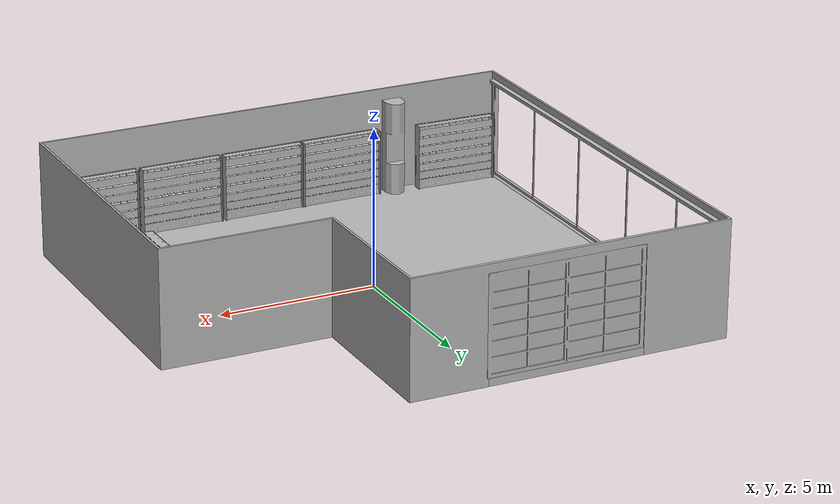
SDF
<sdf version="1.7">
 <world name="default">
  <physics type="ode">
   <ode>
    <solver>
     <type>quick</type>
     <iters>10</iters>
     <sor>1.3</sor>
     <use_dynamic_moi_rescaling>0</use_dynamic_moi_rescaling>
    </solver>
    <constraints>
     <cfm>1e-05</cfm>
     <erp>0.2</erp>
     <contact_max_correcting_vel>1000</contact_max_correcting_vel>
     <contact_surface_layer>0.01</contact_surface_layer>
    </constraints>
   </ode>
   <max_step_size>0.004</max_step_size>
   <real_time_factor>1</real_time_factor>
   <real_time_update_rate>250</real_time_update_rate>
   <gravity>0 0 -9.8066</gravity>
   <magnetic_field>6.0e-6 2.3e-5 -4.2e-5</magnetic_field>
  </physics>
  <model name="AirConditionerC_01_001">
   <frame name="aws_robomaker_retail_AirConditionerC_01::__model__" attached_to="aws_robomaker_retail_AirConditionerC_01::link">
    <pose relative_to="__model__">0 0 0 0 -0 0</pose>
   </frame>
   <link name="aws_robomaker_retail_AirConditionerC_01::link">
    <inertial><mass>50</mass></inertial>
    <collision name="collision">
     <geometry>
      <mesh>
       <uri>model://aws_robomaker_retail_AirConditionerC_01/meshes/aws_AirConditionerC_01_collision.DAE</uri>
       <scale>1 1 1</scale>
      </mesh>
     </geometry>
    </collision>
    <visual name="visual">
     <geometry>
      <mesh>
       <uri>model://aws_robomaker_retail_AirConditionerC_01/meshes/aws_AirConditionerC_01_visual.DAE</uri>
      </mesh>
     </geometry>
     <meta><layer>3</layer></meta>
    </visual>
    <pose relative_to="aws_robomaker_retail_AirConditionerC_01::__model__">0 0 0 0 -0 0</pose>
   </link>
   <static>1</static>
   <pose>7.4582 1.42245 3.29094 0 0 -1.56422</pose>
  </model>
  <model name="BookshelfB_01_001">
   <frame name="aws_robomaker_retail_BookshelfB_01::__model__" attached_to="aws_robomaker_retail_BookshelfB_01::link">
    <pose relative_to="__model__">0 0 0 0 -0 0</pose>
   </frame>
   <link name="aws_robomaker_retail_BookshelfB_01::link">
    <inertial>
     <mass>50</mass>
     <inertia><ixx>19.8742</ixx><ixy>0</ixy><ixz>0</ixz><iyy>49.1263</iyy><iyz>0</iyz><izz>30.2231</izz></inertia>
    </inertial>
    <collision name="collision">
     <geometry>
      <mesh>
       <uri>model://aws_robomaker_retail_BookshelfB_01/meshes/aws_BookshelfB_01_collision.DAE</uri>
       <scale>1 1 1</scale>
      </mesh>
     </geometry>
    </collision>
    <visual name="visual">
     <geometry>
      <mesh><uri>model://aws_robomaker_retail_BookshelfB_01/meshes/aws_BookshelfB_01_visual.DAE</uri></mesh>
     </geometry>
     <meta><layer>1</layer></meta>
    </visual>
    <pose relative_to="aws_robomaker_retail_BookshelfB_01::__model__">0 0 0 0 -0 0</pose>
   </link>
   <static>1</static>
   <pose>-6.18968 -6.78565 -0.008942 0.003533 0.000121 -0.032073</pose>
  </model>
  <model name="BookshelfB_01_002">
   <frame name="aws_robomaker_retail_BookshelfB_01::__model__" attached_to="aws_robomaker_retail_BookshelfB_01::link">
    <pose relative_to="__model__">0 0 0 0 -0 0</pose>
   </frame>
   <link name="aws_robomaker_retail_BookshelfB_01::link">
    <inertial>
     <mass>50</mass>
     <inertia><ixx>19.8742</ixx><ixy>0</ixy><ixz>0</ixz><iyy>49.1263</iyy><iyz>0</iyz><izz>30.2231</izz></inertia>
    </inertial>
    <collision name="collision">
     <geometry>
      <mesh>
       <uri>model://aws_robomaker_retail_BookshelfB_01/meshes/aws_BookshelfB_01_collision.DAE</uri>
       <scale>1 1 1</scale>
      </mesh>
     </geometry>
    </collision>
    <visual name="visual">
     <geometry>
      <mesh><uri>model://aws_robomaker_retail_BookshelfB_01/meshes/aws_BookshelfB_01_visual.DAE</uri></mesh>
     </geometry>
     <meta><layer>1</layer></meta>
    </visual>
    <pose relative_to="aws_robomaker_retail_BookshelfB_01::__model__">0 0 0 0 -0 0</pose>
   </link>
   <static>1</static>
   <pose>-2.20941 -6.97146 0.017074 -0.000128 -0.000252 0.000364</pose>
  </model>
  <model name="BookshelfB_01_003">
   <frame name="aws_robomaker_retail_BookshelfB_01::__model__" attached_to="aws_robomaker_retail_BookshelfB_01::link">
    <pose relative_to="__model__">0 0 0 0 -0 0</pose>
   </frame>
   <link name="aws_robomaker_retail_BookshelfB_01::link">
    <inertial>
     <mass>50</mass>
     <inertia><ixx>19.8742</ixx><ixy>0</ixy><ixz>0</ixz><iyy>49.1263</iyy><iyz>0</iyz><izz>30.2231</izz></inertia>
    </inertial>
    <collision name="collision">
     <geometry>
      <mesh>
       <uri>model://aws_robomaker_retail_BookshelfB_01/meshes/aws_BookshelfB_01_collision.DAE</uri>
       <scale>1 1 1</scale>
      </mesh>
     </geometry>
    </collision>
    <visual name="visual">
     <geometry>
      <mesh><uri>model://aws_robomaker_retail_BookshelfB_01/meshes/aws_BookshelfB_01_visual.DAE</uri></mesh>
     </geometry>
     <meta><layer>1</layer></meta>
    </visual>
    <pose relative_to="aws_robomaker_retail_BookshelfB_01::__model__">0 0 0 0 -0 0</pose>
   </link>
   <static>1</static>
   <pose>0.522246 -6.9715 0.017947 -0.003292 0 0</pose>
  </model>
  <model name="BookshelfB_01_004">
   <frame name="aws_robomaker_retail_BookshelfB_01::__model__" attached_to="aws_robomaker_retail_BookshelfB_01::link">
    <pose relative_to="__model__">0 0 0 0 -0 0</pose>
   </frame>
   <link name="aws_robomaker_retail_BookshelfB_01::link">
    <inertial>
     <mass>50</mass>
     <inertia><ixx>19.8742</ixx><ixy>0</ixy><ixz>0</ixz><iyy>49.1263</iyy><iyz>0</iyz><izz>30.2231</izz></inertia>
    </inertial>
    <collision name="collision">
     <geometry>
      <mesh>
       <uri>model://aws_robomaker_retail_BookshelfB_01/meshes/aws_BookshelfB_01_collision.DAE</uri>
       <scale>1 1 1</scale>
      </mesh>
     </geometry>
    </collision>
    <visual name="visual">
     <geometry>
      <mesh><uri>model://aws_robomaker_retail_BookshelfB_01/meshes/aws_BookshelfB_01_visual.DAE</uri></mesh>
     </geometry>
     <meta><layer>1</layer></meta>
    </visual>
    <pose relative_to="aws_robomaker_retail_BookshelfB_01::__model__">0 0 0 0 -0 0</pose>
   </link>
   <static>1</static>
   <pose>3.29339 -6.96366 0.017383 8e-06 -2e-06 -0</pose>
  </model>
  <model name="BookshelfB_01_005">
   <frame name="aws_robomaker_retail_BookshelfB_01::__model__" attached_to="aws_robomaker_retail_BookshelfB_01::link">
    <pose relative_to="__model__">0 0 0 0 -0 0</pose>
   </frame>
   <link name="aws_robomaker_retail_BookshelfB_01::link">
    <inertial>
     <mass>50</mass>
     <inertia><ixx>19.8742</ixx><ixy>0</ixy><ixz>0</ixz><iyy>49.1263</iyy><iyz>0</iyz><izz>30.2231</izz></inertia>
    </inertial>
    <collision name="collision">
     <geometry>
      <mesh>
       <uri>model://aws_robomaker_retail_BookshelfB_01/meshes/aws_BookshelfB_01_collision.DAE</uri>
       <scale>1 1 1</scale>
      </mesh>
     </geometry>
    </collision>
    <visual name="visual">
     <geometry>
      <mesh><uri>model://aws_robomaker_retail_BookshelfB_01/meshes/aws_BookshelfB_01_visual.DAE</uri></mesh>
     </geometry>
     <meta><layer>1</layer></meta>
    </visual>
    <pose relative_to="aws_robomaker_retail_BookshelfB_01::__model__">0 0 0 0 -0 0</pose>
   </link>
   <static>1</static>
   <pose>6.08038 -6.98766 0.017409 0.000174 4e-06 0</pose>
  </model>
  <model name="BookshelfB_01_006">
   <frame name="aws_robomaker_retail_BookshelfB_01::__model__" attached_to="aws_robomaker_retail_BookshelfB_01::link">
    <pose relative_to="__model__">0 0 0 0 -0 0</pose>
   </frame>
   <link name="aws_robomaker_retail_BookshelfB_01::link">
    <inertial>
     <mass>50</mass>
     <inertia><ixx>19.8742</ixx><ixy>0</ixy><ixz>0</ixz><iyy>49.1263</iyy><iyz>0</iyz><izz>30.2231</izz></inertia>
    </inertial>
    <collision name="collision">
     <geometry>
      <mesh>
       <uri>model://aws_robomaker_retail_BookshelfB_01/meshes/aws_BookshelfB_01_collision.DAE</uri>
       <scale>1 1 1</scale>
      </mesh>
     </geometry>
    </collision>
    <visual name="visual">
     <geometry>
      <mesh><uri>model://aws_robomaker_retail_BookshelfB_01/meshes/aws_BookshelfB_01_visual.DAE</uri></mesh>
     </geometry>
     <meta><layer>1</layer></meta>
    </visual>
    <pose relative_to="aws_robomaker_retail_BookshelfB_01::__model__">0 0 0 0 -0 0</pose>
   </link>
   <static>1</static>
   <pose>7.47833 -5.2983 0.017443 -0.001974 -0.000211 1.55406</pose>
  </model>
  <model name="BookshelfB_01_007">
   <frame name="aws_robomaker_retail_BookshelfB_01::__model__" attached_to="aws_robomaker_retail_BookshelfB_01::link">
    <pose relative_to="__model__">0 0 0 0 -0 0</pose>
   </frame>
   <link name="aws_robomaker_retail_BookshelfB_01::link">
    <inertial>
     <mass>50</mass>
     <inertia><ixx>19.8742</ixx><ixy>0</ixy><ixz>0</ixz><iyy>49.1263</iyy><iyz>0</iyz><izz>30.2231</izz></inertia>
    </inertial>
    <collision name="collision">
     <geometry>
      <mesh>
       <uri>model://aws_robomaker_retail_BookshelfB_01/meshes/aws_BookshelfB_01_collision.DAE</uri>
       <scale>1 1 1</scale>
      </mesh>
     </geometry>
    </collision>
    <visual name="visual">
     <geometry>
      <mesh><uri>model://aws_robomaker_retail_BookshelfB_01/meshes/aws_BookshelfB_01_visual.DAE</uri></mesh>
     </geometry>
     <meta><layer>1</layer></meta>
    </visual>
    <pose relative_to="aws_robomaker_retail_BookshelfB_01::__model__">0 0 0 0 -0 0</pose>
   </link>
   <static>1</static>
   <pose>7.47833 -2.51065 0.017402 1e-05 -1.3e-05 1.56207</pose>
  </model>
  <model name="BookshelfB_01_008">
   <frame name="aws_robomaker_retail_BookshelfB_01::__model__" attached_to="aws_robomaker_retail_BookshelfB_01::link">
    <pose relative_to="__model__">0 0 0 0 -0 0</pose>
   </frame>
   <link name="aws_robomaker_retail_BookshelfB_01::link">
    <inertial>
     <mass>50</mass>
     <inertia><ixx>19.8742</ixx><ixy>0</ixy><ixz>0</ixz><iyy>49.1263</iyy><iyz>0</iyz><izz>30.2231</izz></inertia>
    </inertial>
    <collision name="collision">
     <geometry>
      <mesh>
       <uri>model://aws_robomaker_retail_BookshelfB_01/meshes/aws_BookshelfB_01_collision.DAE</uri>
       <scale>1 1 1</scale>
      </mesh>
     </geometry>
    </collision>
    <visual name="visual">
     <geometry>
      <mesh><uri>model://aws_robomaker_retail_BookshelfB_01/meshes/aws_BookshelfB_01_visual.DAE</uri></mesh>
     </geometry>
     <meta><layer>1</layer></meta>
    </visual>
    <pose relative_to="aws_robomaker_retail_BookshelfB_01::__model__">0 0 0 0 -0 0</pose>
   </link>
   <static>1</static>
   <pose>7.47833 0.402539 0.017181 3e-06 -0.000156 1.5708</pose>
  </model>
  <model name="ColumnB_01_002">
   <frame name="aws_robomaker_retail_ColumnB_01::__model__" attached_to="aws_robomaker_retail_ColumnB_01::link">
    <pose relative_to="__model__">0 0 0 0 -0 0</pose>
   </frame>
   <link name="aws_robomaker_retail_ColumnB_01::link">
    <inertial>
     <mass>50</mass>
     <inertia><ixx>44.5597</ixx><ixy>0</ixy><ixz>0</ixz><iyy>44.5597</iyy><iyz>0</iyz><izz>1.87942</izz></inertia>
    </inertial>
    <collision name="collision">
     <geometry>
      <mesh>
       <uri>model://aws_robomaker_retail_ColumnB_01/meshes/aws_ColumnB_01_collision.DAE</uri>
       <scale>1 1 1</scale>
      </mesh>
     </geometry>
    </collision>
    <visual name="visual">
     <geometry>
      <mesh><uri>model://aws_robomaker_retail_ColumnB_01/meshes/aws_ColumnB_01_visual.DAE</uri></mesh>
     </geometry>
     <meta><layer>1</layer></meta>
    </visual>
    <pose relative_to="aws_robomaker_retail_ColumnB_01::__model__">0 0 0 0 -0 0</pose>
   </link>
   <static>1</static>
   <pose>-4.07623 -6.86071 0.017511 0.001895 -0.000628 -0.003755</pose>
  </model>
  <model name="DoorB_01_001">
   <frame name="aws_robomaker_retail_DoorB_01::__model__" attached_to="aws_robomaker_retail_DoorB_01::link">
    <pose relative_to="__model__">0 0 0 0 -0 0</pose>
   </frame>
   <link name="aws_robomaker_retail_DoorB_01::link">
    <inertial>
     <mass>50</mass>
     <inertia><ixx>44.5597</ixx><ixy>0</ixy><ixz>0</ixz><iyy>151.699</iyy><iyz>0</iyz><izz>107.806</izz></inertia>
    </inertial>
    <collision name="collision">
     <geometry>
      <mesh>
       <uri>model://aws_robomaker_retail_DoorB_01/meshes/aws_DoorB_01_collision.DAE</uri>
       <scale>1 1 1</scale>
      </mesh>
     </geometry>
    </collision>
    <visual name="visual">
     <geometry>
      <mesh><uri>model://aws_robomaker_retail_DoorB_01/meshes/aws_DoorB_01_visual.DAE</uri></mesh>
     </geometry>
     <meta><layer>2</layer></meta>
    </visual>
    <pose relative_to="aws_robomaker_retail_DoorB_01::__model__">0 0 0 0 -0 0</pose>
   </link>
   <static>1</static>
   <pose>-2.49246 7.21937 -0.035203 0 -0 0</pose>
  </model>
  <model name="RetailShopFloor_01_001">
   <frame name="aws_robomaker_retail_RetailShopFloor_01::__model__" attached_to="aws_robomaker_retail_RetailShopFloor_01::link">
    <pose relative_to="__model__">0 0 0 0 -0 0</pose>
   </frame>
   <link name="aws_robomaker_retail_RetailShopFloor_01::link">
    <inertial><mass>100</mass></inertial>
    <collision name="collision">
     <geometry>
      <mesh>
       <uri>model://aws_robomaker_retail_RetailShopFloor_01/meshes/aws_RetailShopFloor_01_collision.DAE</uri>
       <scale>1 1 1</scale>
      </mesh>
     </geometry>
    </collision>
    <visual name="visual">
     <geometry>
      <mesh>
       <uri>model://aws_robomaker_retail_RetailShopFloor_01/meshes/aws_RetailShopFloor_01_visual.DAE</uri>
      </mesh>
     </geometry>
     <meta><layer>1</layer></meta>
    </visual>
    <pose relative_to="aws_robomaker_retail_RetailShopFloor_01::__model__">0 0 0 0 -0 0</pose>
   </link>
   <static>1</static>
   <pose>-0.002687 0 -0.276618 0 -0 0</pose>
  </model>
  <model name="Horologe_01_001">
   <frame name="aws_robomaker_retail_Horologe_01::__model__" attached_to="aws_robomaker_retail_Horologe_01::link">
    <pose relative_to="__model__">0 0 0 0 -0 0</pose>
   </frame>
   <link name="aws_robomaker_retail_Horologe_01::link">
    <inertial><mass>1</mass></inertial>
    <collision name="collision">
     <geometry>
      <mesh>
       <uri>model://aws_robomaker_retail_Horologe_01/meshes/aws_Horologe_01_collision.DAE</uri>
       <scale>1 1 1</scale>
      </mesh>
     </geometry>
    </collision>
    <visual name="visual">
     <geometry>
      <mesh><uri>model://aws_robomaker_retail_Horologe_01/meshes/aws_Horologe_01_visual.DAE</uri></mesh>
     </geometry>
     <meta><layer>2</layer></meta>
    </visual>
    <pose relative_to="aws_robomaker_retail_Horologe_01::__model__">0 0 0 0 -0 0</pose>
   </link>
   <static>1</static>
   <pose>2.40512 3.02571 2.52519 0 0 -1.56558</pose>
  </model>
  <model name="RetailShopWall_01_001">
   <frame name="aws_robomaker_retail_RetailShopWall_01::__model__" attached_to="aws_robomaker_retail_RetailShopWall_01::link">
    <pose relative_to="__model__">0 0 0 0 -0 0</pose>
   </frame>
   <link name="aws_robomaker_retail_RetailShopWall_01::link">
    <inertial><mass>1</mass></inertial>
    <collision name="collision">
     <geometry>
      <mesh>
       <uri>model://aws_robomaker_retail_RetailShopWall_01/meshes/aws_RetailShopWall_01_collision.DAE</uri>
       <scale>1 1 1</scale>
      </mesh>
     </geometry>
    </collision>
    <visual name="visual">
     <geometry>
      <mesh><uri>model://aws_robomaker_retail_RetailShopWall_01/meshes/aws_RetailShopWall_01_visual.DAE</uri></mesh>
     </geometry>
     <meta><layer>2</layer></meta>
    </visual>
    <pose relative_to="aws_robomaker_retail_RetailShopWall_01::__model__">0 0 0 0 -0 0</pose>
   </link>
   <static>1</static>
   <pose>0 0 -0.281282 0 -0 0</pose>
  </model>
  <model name="ShopWindow_01_001">
   <frame name="aws_robomaker_retail_ShopWindow_01::__model__" attached_to="aws_robomaker_retail_ShopWindow_01::link">
    <pose relative_to="__model__">0 0 0 0 -0 0</pose>
   </frame>
   <link name="aws_robomaker_retail_ShopWindow_01::link">
    <inertial><mass>1</mass></inertial>
    <collision name="collision">
     <geometry>
      <mesh>
       <uri>model://aws_robomaker_retail_ShopWindow_01/meshes/aws_ShopWindow_01_collision.DAE</uri>
       <scale>1 1 1</scale>
      </mesh>
     </geometry>
    </collision>
    <visual name="visual">
     <geometry>
      <mesh><uri>model://aws_robomaker_retail_ShopWindow_01/meshes/aws_ShopWindow_01_visual.DAE</uri></mesh>
     </geometry>
    </visual>
    <pose relative_to="aws_robomaker_retail_ShopWindow_01::__model__">0 0 0 0 -0 0</pose>
   </link>
   <static>1</static>
   <pose>-7.73816 0.01596 -0.180092 0 -0 0</pose>
  </model>
  <light name="sun" type="directional">
   <pose>0 0 10 0 -0 0</pose>
   <diffuse>0.8 0.8 0.8 1</diffuse>
   <specular>0.2 0.2 0.2 1</specular>
   <attenuation>
    <range>1000</range>
    <constant>0.9</constant>
    <linear>0.01</linear>
    <quadratic>0.001</quadratic>
   </attenuation>
   <direction>-0.5 0.1 -0.9</direction>
   <spot><inner_angle>0</inner_angle><outer_angle>0</outer_angle><falloff>0</falloff></spot>
  </light>
  <gravity>0 0 -9.8</gravity>
  <magnetic_field>6e-06 2.3e-05 -4.2e-05</magnetic_field>
  <atmosphere type="adiabatic"/>
  <scene><ambient>0.4 0.4 0.4 1</ambient><background>0.7 0.7 0.7 1</background><shadows>1</shadows></scene>
  <spherical_coordinates>
   <surface_model>EARTH_WGS84</surface_model>
   <latitude_deg>0</latitude_deg>
   <longitude_deg>0</longitude_deg>
   <elevation>0</elevation>
   <heading_deg>0</heading_deg>
  </spherical_coordinates>
 </world>
</sdf>
